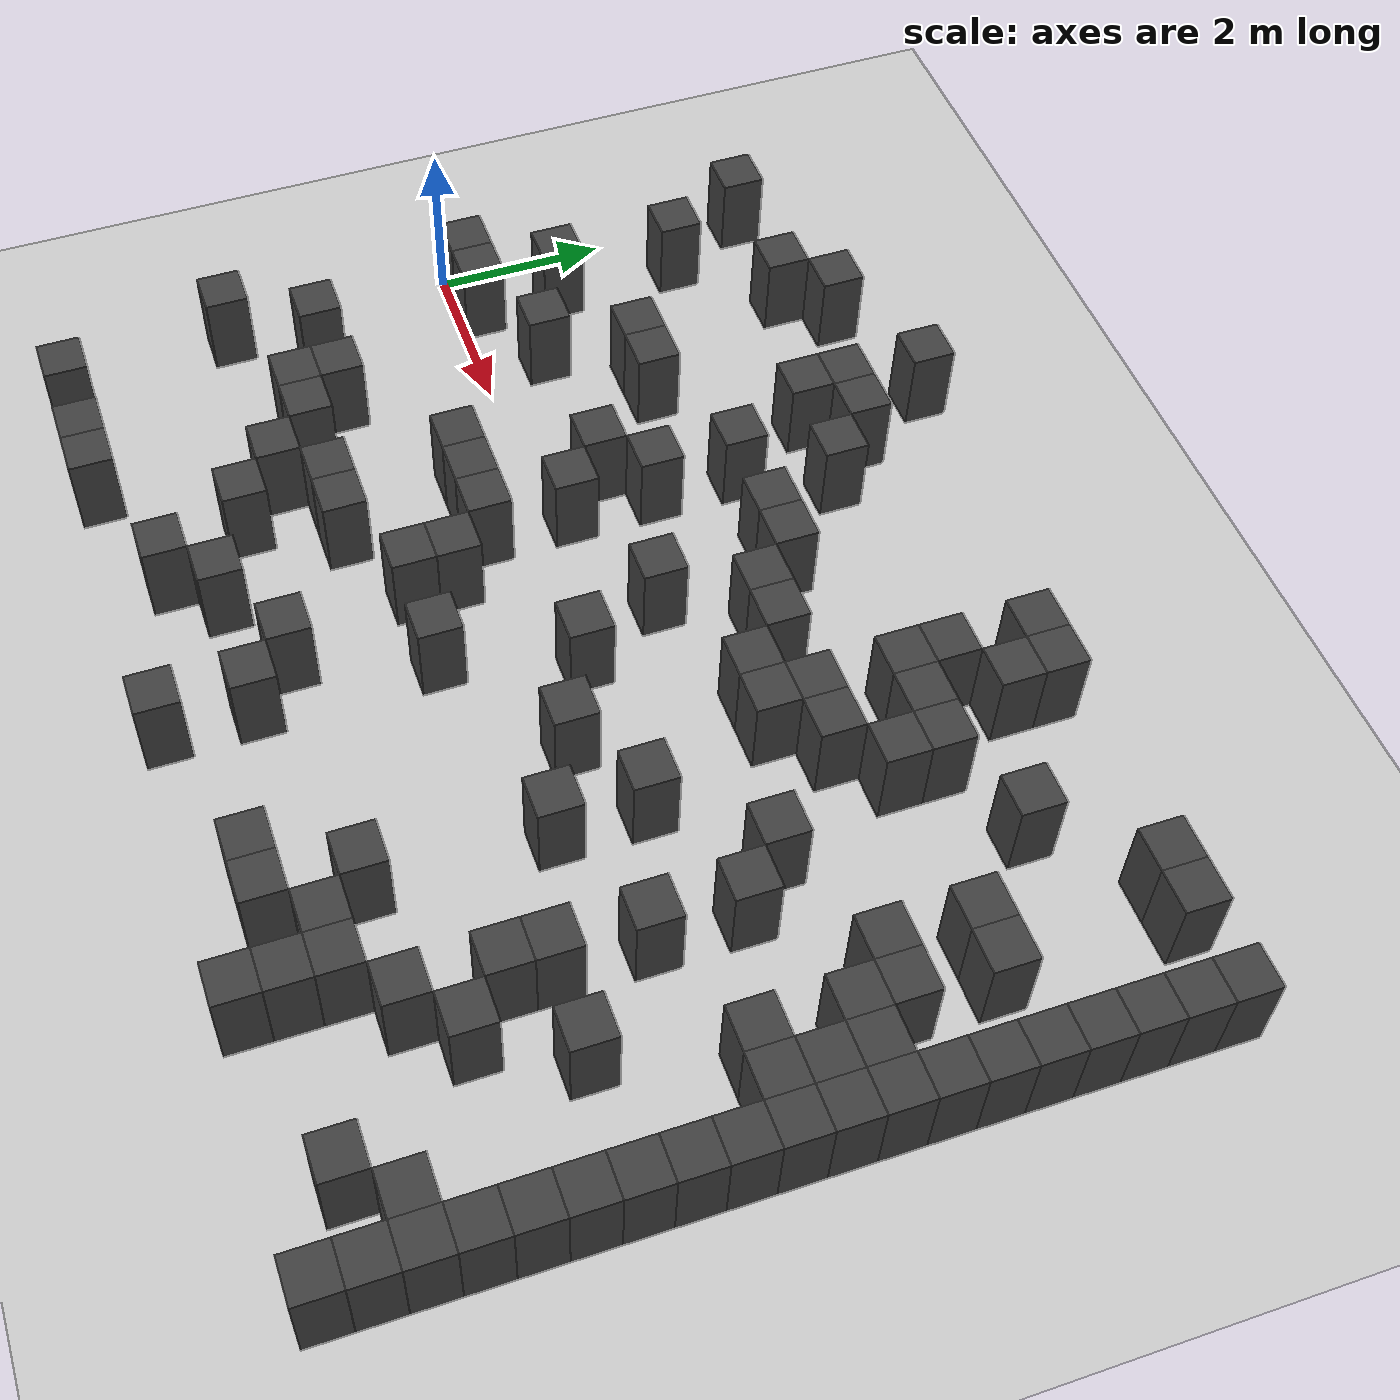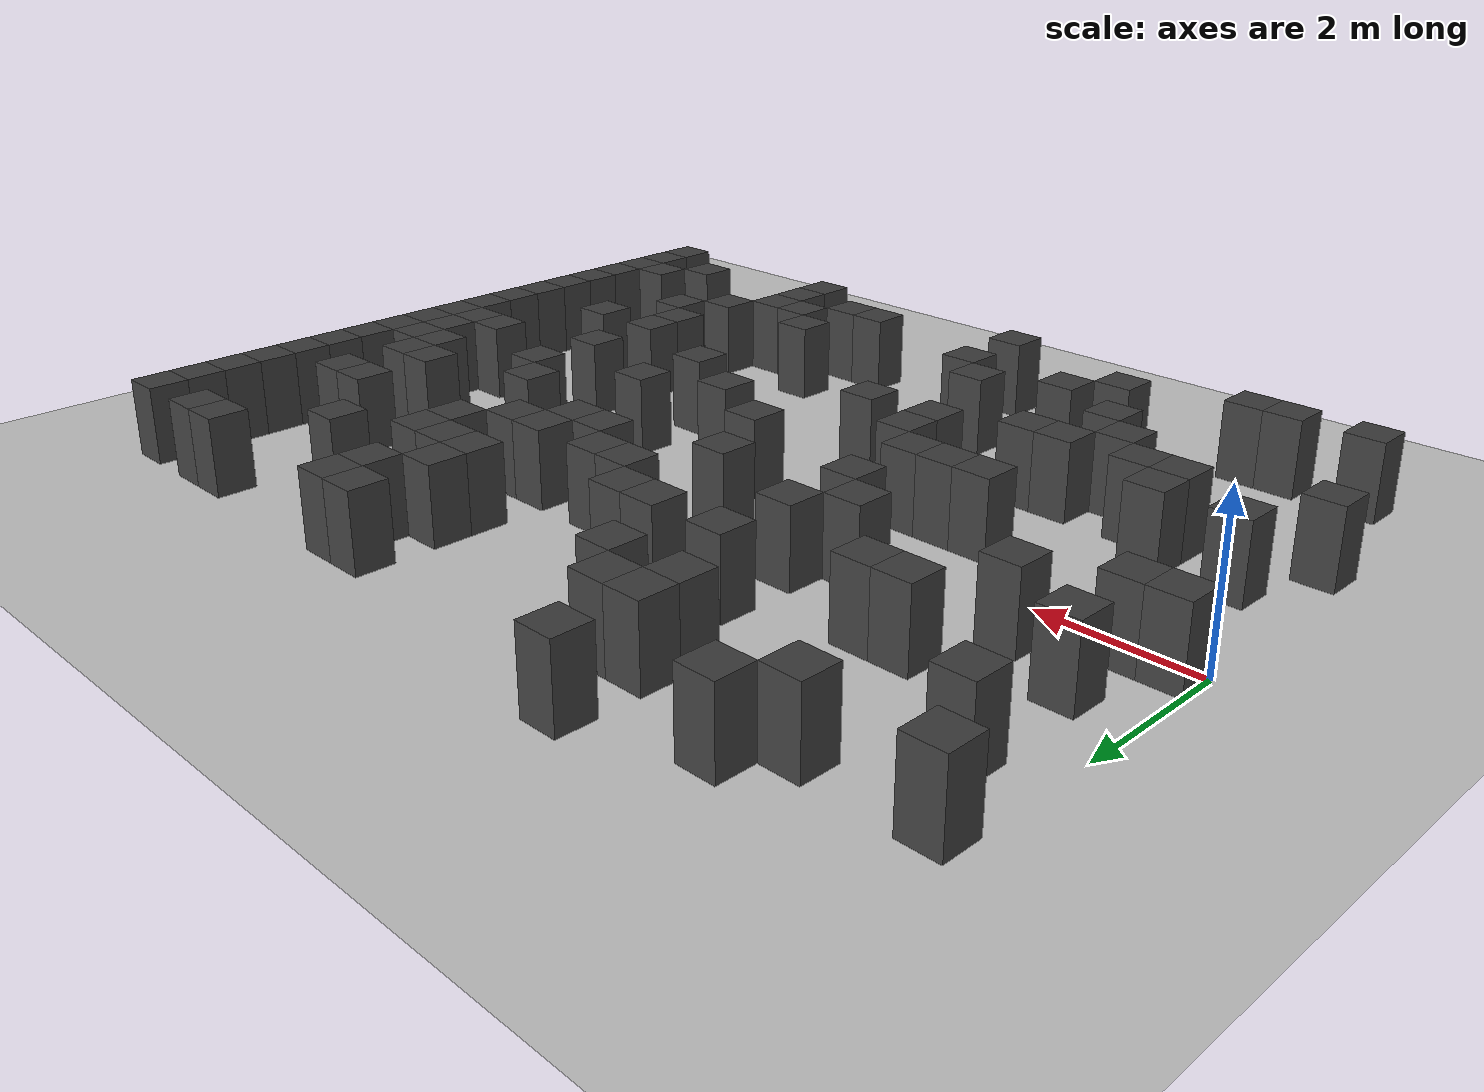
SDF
<sdf version="1.7">
 <world name="map_4226">
  <model name="ground_plane">
   <static>true</static>
   <link name="link">
    <collision name="collision">
     <geometry><plane><normal>0 0 1</normal><size>200 200</size></plane></geometry>
    </collision>
    <visual name="visual">
     <geometry><plane><normal>0 0 1</normal><size>200 200</size></plane></geometry>
     <material><ambient>0.8 0.8 0.8 1</ambient><diffuse>0.8 0.8 0.8 1</diffuse></material>
    </visual>
   </link>
  </model>
  <model name="maze_environment">
   <static>true</static>
   <link name="wall_222">
    <pose>3.750 4.750 0.500 0 0 0</pose>
    <collision name="col"><geometry><box><size>0.5 0.5 1.0</size></box></geometry></collision>
    <visual name="vis">
     <geometry><box><size>0.5 0.5 1.0</size></box></geometry>
     <material><ambient>0.15 0.15 0.15 1</ambient><diffuse>0.25 0.25 0.25 1</diffuse></material>
    </visual>
   </link>
   <link name="wall_236">
    <pose>2.250 4.250 0.500 0 0 0</pose>
    <collision name="col"><geometry><box><size>0.5 0.5 1.0</size></box></geometry></collision>
    <visual name="vis">
     <geometry><box><size>0.5 0.5 1.0</size></box></geometry>
     <material><ambient>0.15 0.15 0.15 1</ambient><diffuse>0.25 0.25 0.25 1</diffuse></material>
    </visual>
   </link>
   <link name="wall_237">
    <pose>7.750 4.250 0.500 0 0 0</pose>
    <collision name="col"><geometry><box><size>0.5 0.5 1.0</size></box></geometry></collision>
    <visual name="vis">
     <geometry><box><size>0.5 0.5 1.0</size></box></geometry>
     <material><ambient>0.15 0.15 0.15 1</ambient><diffuse>0.25 0.25 0.25 1</diffuse></material>
    </visual>
   </link>
   <link name="wall_238">
    <pose>8.250 4.250 0.500 0 0 0</pose>
    <collision name="col"><geometry><box><size>0.5 0.5 1.0</size></box></geometry></collision>
    <visual name="vis">
     <geometry><box><size>0.5 0.5 1.0</size></box></geometry>
     <material><ambient>0.15 0.15 0.15 1</ambient><diffuse>0.25 0.25 0.25 1</diffuse></material>
    </visual>
   </link>
   <link name="wall_239">
    <pose>10.750 4.250 0.500 0 0 0</pose>
    <collision name="col"><geometry><box><size>0.5 0.5 1.0</size></box></geometry></collision>
    <visual name="vis">
     <geometry><box><size>0.5 0.5 1.0</size></box></geometry>
     <material><ambient>0.15 0.15 0.15 1</ambient><diffuse>0.25 0.25 0.25 1</diffuse></material>
    </visual>
   </link>
   <link name="wall_240">
    <pose>11.250 4.250 0.500 0 0 0</pose>
    <collision name="col"><geometry><box><size>0.5 0.5 1.0</size></box></geometry></collision>
    <visual name="vis">
     <geometry><box><size>0.5 0.5 1.0</size></box></geometry>
     <material><ambient>0.15 0.15 0.15 1</ambient><diffuse>0.25 0.25 0.25 1</diffuse></material>
    </visual>
   </link>
   <link name="wall_241">
    <pose>12.250 4.250 0.500 0 0 0</pose>
    <collision name="col"><geometry><box><size>0.5 0.5 1.0</size></box></geometry></collision>
    <visual name="vis">
     <geometry><box><size>0.5 0.5 1.0</size></box></geometry>
     <material><ambient>0.15 0.15 0.15 1</ambient><diffuse>0.25 0.25 0.25 1</diffuse></material>
    </visual>
   </link>
   <link name="wall_245">
    <pose>0.250 3.750 0.500 0 0 0</pose>
    <collision name="col"><geometry><box><size>0.5 0.5 1.0</size></box></geometry></collision>
    <visual name="vis">
     <geometry><box><size>0.5 0.5 1.0</size></box></geometry>
     <material><ambient>0.15 0.15 0.15 1</ambient><diffuse>0.25 0.25 0.25 1</diffuse></material>
    </visual>
   </link>
   <link name="wall_246">
    <pose>1.750 3.750 0.500 0 0 0</pose>
    <collision name="col"><geometry><box><size>0.5 0.5 1.0</size></box></geometry></collision>
    <visual name="vis">
     <geometry><box><size>0.5 0.5 1.0</size></box></geometry>
     <material><ambient>0.15 0.15 0.15 1</ambient><diffuse>0.25 0.25 0.25 1</diffuse></material>
    </visual>
   </link>
   <link name="wall_247">
    <pose>3.750 3.750 0.500 0 0 0</pose>
    <collision name="col"><geometry><box><size>0.5 0.5 1.0</size></box></geometry></collision>
    <visual name="vis">
     <geometry><box><size>0.5 0.5 1.0</size></box></geometry>
     <material><ambient>0.15 0.15 0.15 1</ambient><diffuse>0.25 0.25 0.25 1</diffuse></material>
    </visual>
   </link>
   <link name="wall_248">
    <pose>4.250 3.750 0.500 0 0 0</pose>
    <collision name="col"><geometry><box><size>0.5 0.5 1.0</size></box></geometry></collision>
    <visual name="vis">
     <geometry><box><size>0.5 0.5 1.0</size></box></geometry>
     <material><ambient>0.15 0.15 0.15 1</ambient><diffuse>0.25 0.25 0.25 1</diffuse></material>
    </visual>
   </link>
   <link name="wall_249">
    <pose>8.250 3.750 0.500 0 0 0</pose>
    <collision name="col"><geometry><box><size>0.5 0.5 1.0</size></box></geometry></collision>
    <visual name="vis">
     <geometry><box><size>0.5 0.5 1.0</size></box></geometry>
     <material><ambient>0.15 0.15 0.15 1</ambient><diffuse>0.25 0.25 0.25 1</diffuse></material>
    </visual>
   </link>
   <link name="wall_250">
    <pose>12.250 3.750 0.500 0 0 0</pose>
    <collision name="col"><geometry><box><size>0.5 0.5 1.0</size></box></geometry></collision>
    <visual name="vis">
     <geometry><box><size>0.5 0.5 1.0</size></box></geometry>
     <material><ambient>0.15 0.15 0.15 1</ambient><diffuse>0.25 0.25 0.25 1</diffuse></material>
    </visual>
   </link>
   <link name="wall_252">
    <pose>3.750 3.250 0.500 0 0 0</pose>
    <collision name="col"><geometry><box><size>0.5 0.5 1.0</size></box></geometry></collision>
    <visual name="vis">
     <geometry><box><size>0.5 0.5 1.0</size></box></geometry>
     <material><ambient>0.15 0.15 0.15 1</ambient><diffuse>0.25 0.25 0.25 1</diffuse></material>
    </visual>
   </link>
   <link name="wall_253">
    <pose>4.750 3.250 0.500 0 0 0</pose>
    <collision name="col"><geometry><box><size>0.5 0.5 1.0</size></box></geometry></collision>
    <visual name="vis">
     <geometry><box><size>0.5 0.5 1.0</size></box></geometry>
     <material><ambient>0.15 0.15 0.15 1</ambient><diffuse>0.25 0.25 0.25 1</diffuse></material>
    </visual>
   </link>
   <link name="wall_254">
    <pose>7.750 3.250 0.500 0 0 0</pose>
    <collision name="col"><geometry><box><size>0.5 0.5 1.0</size></box></geometry></collision>
    <visual name="vis">
     <geometry><box><size>0.5 0.5 1.0</size></box></geometry>
     <material><ambient>0.15 0.15 0.15 1</ambient><diffuse>0.25 0.25 0.25 1</diffuse></material>
    </visual>
   </link>
   <link name="wall_255">
    <pose>9.750 3.250 0.500 0 0 0</pose>
    <collision name="col"><geometry><box><size>0.5 0.5 1.0</size></box></geometry></collision>
    <visual name="vis">
     <geometry><box><size>0.5 0.5 1.0</size></box></geometry>
     <material><ambient>0.15 0.15 0.15 1</ambient><diffuse>0.25 0.25 0.25 1</diffuse></material>
    </visual>
   </link>
   <link name="wall_256">
    <pose>12.250 3.250 0.500 0 0 0</pose>
    <collision name="col"><geometry><box><size>0.5 0.5 1.0</size></box></geometry></collision>
    <visual name="vis">
     <geometry><box><size>0.5 0.5 1.0</size></box></geometry>
     <material><ambient>0.15 0.15 0.15 1</ambient><diffuse>0.25 0.25 0.25 1</diffuse></material>
    </visual>
   </link>
   <link name="wall_264">
    <pose>0.750 2.750 0.500 0 0 0</pose>
    <collision name="col"><geometry><box><size>0.5 0.5 1.0</size></box></geometry></collision>
    <visual name="vis">
     <geometry><box><size>0.5 0.5 1.0</size></box></geometry>
     <material><ambient>0.15 0.15 0.15 1</ambient><diffuse>0.25 0.25 0.25 1</diffuse></material>
    </visual>
   </link>
   <link name="wall_265">
    <pose>7.750 2.750 0.500 0 0 0</pose>
    <collision name="col"><geometry><box><size>0.5 0.5 1.0</size></box></geometry></collision>
    <visual name="vis">
     <geometry><box><size>0.5 0.5 1.0</size></box></geometry>
     <material><ambient>0.15 0.15 0.15 1</ambient><diffuse>0.25 0.25 0.25 1</diffuse></material>
    </visual>
   </link>
   <link name="wall_266">
    <pose>8.250 2.750 0.500 0 0 0</pose>
    <collision name="col"><geometry><box><size>0.5 0.5 1.0</size></box></geometry></collision>
    <visual name="vis">
     <geometry><box><size>0.5 0.5 1.0</size></box></geometry>
     <material><ambient>0.15 0.15 0.15 1</ambient><diffuse>0.25 0.25 0.25 1</diffuse></material>
    </visual>
   </link>
   <link name="wall_267">
    <pose>8.750 2.750 0.500 0 0 0</pose>
    <collision name="col"><geometry><box><size>0.5 0.5 1.0</size></box></geometry></collision>
    <visual name="vis">
     <geometry><box><size>0.5 0.5 1.0</size></box></geometry>
     <material><ambient>0.15 0.15 0.15 1</ambient><diffuse>0.25 0.25 0.25 1</diffuse></material>
    </visual>
   </link>
   <link name="wall_268">
    <pose>12.250 2.750 0.500 0 0 0</pose>
    <collision name="col"><geometry><box><size>0.5 0.5 1.0</size></box></geometry></collision>
    <visual name="vis">
     <geometry><box><size>0.5 0.5 1.0</size></box></geometry>
     <material><ambient>0.15 0.15 0.15 1</ambient><diffuse>0.25 0.25 0.25 1</diffuse></material>
    </visual>
   </link>
   <link name="wall_275">
    <pose>4.250 2.250 0.500 0 0 0</pose>
    <collision name="col"><geometry><box><size>0.5 0.5 1.0</size></box></geometry></collision>
    <visual name="vis">
     <geometry><box><size>0.5 0.5 1.0</size></box></geometry>
     <material><ambient>0.15 0.15 0.15 1</ambient><diffuse>0.25 0.25 0.25 1</diffuse></material>
    </visual>
   </link>
   <link name="wall_276">
    <pose>5.250 2.250 0.500 0 0 0</pose>
    <collision name="col"><geometry><box><size>0.5 0.5 1.0</size></box></geometry></collision>
    <visual name="vis">
     <geometry><box><size>0.5 0.5 1.0</size></box></geometry>
     <material><ambient>0.15 0.15 0.15 1</ambient><diffuse>0.25 0.25 0.25 1</diffuse></material>
    </visual>
   </link>
   <link name="wall_277">
    <pose>5.750 2.250 0.500 0 0 0</pose>
    <collision name="col"><geometry><box><size>0.5 0.5 1.0</size></box></geometry></collision>
    <visual name="vis">
     <geometry><box><size>0.5 0.5 1.0</size></box></geometry>
     <material><ambient>0.15 0.15 0.15 1</ambient><diffuse>0.25 0.25 0.25 1</diffuse></material>
    </visual>
   </link>
   <link name="wall_278">
    <pose>8.750 2.250 0.500 0 0 0</pose>
    <collision name="col"><geometry><box><size>0.5 0.5 1.0</size></box></geometry></collision>
    <visual name="vis">
     <geometry><box><size>0.5 0.5 1.0</size></box></geometry>
     <material><ambient>0.15 0.15 0.15 1</ambient><diffuse>0.25 0.25 0.25 1</diffuse></material>
    </visual>
   </link>
   <link name="wall_279">
    <pose>10.750 2.250 0.500 0 0 0</pose>
    <collision name="col"><geometry><box><size>0.5 0.5 1.0</size></box></geometry></collision>
    <visual name="vis">
     <geometry><box><size>0.5 0.5 1.0</size></box></geometry>
     <material><ambient>0.15 0.15 0.15 1</ambient><diffuse>0.25 0.25 0.25 1</diffuse></material>
    </visual>
   </link>
   <link name="wall_280">
    <pose>11.250 2.250 0.500 0 0 0</pose>
    <collision name="col"><geometry><box><size>0.5 0.5 1.0</size></box></geometry></collision>
    <visual name="vis">
     <geometry><box><size>0.5 0.5 1.0</size></box></geometry>
     <material><ambient>0.15 0.15 0.15 1</ambient><diffuse>0.25 0.25 0.25 1</diffuse></material>
    </visual>
   </link>
   <link name="wall_281">
    <pose>12.250 2.250 0.500 0 0 0</pose>
    <collision name="col"><geometry><box><size>0.5 0.5 1.0</size></box></geometry></collision>
    <visual name="vis">
     <geometry><box><size>0.5 0.5 1.0</size></box></geometry>
     <material><ambient>0.15 0.15 0.15 1</ambient><diffuse>0.25 0.25 0.25 1</diffuse></material>
    </visual>
   </link>
   <link name="wall_288">
    <pose>2.250 1.750 0.500 0 0 0</pose>
    <collision name="col"><geometry><box><size>0.5 0.5 1.0</size></box></geometry></collision>
    <visual name="vis">
     <geometry><box><size>0.5 0.5 1.0</size></box></geometry>
     <material><ambient>0.15 0.15 0.15 1</ambient><diffuse>0.25 0.25 0.25 1</diffuse></material>
    </visual>
   </link>
   <link name="wall_289">
    <pose>2.750 1.750 0.500 0 0 0</pose>
    <collision name="col"><geometry><box><size>0.5 0.5 1.0</size></box></geometry></collision>
    <visual name="vis">
     <geometry><box><size>0.5 0.5 1.0</size></box></geometry>
     <material><ambient>0.15 0.15 0.15 1</ambient><diffuse>0.25 0.25 0.25 1</diffuse></material>
    </visual>
   </link>
   <link name="wall_290">
    <pose>6.250 1.750 0.500 0 0 0</pose>
    <collision name="col"><geometry><box><size>0.5 0.5 1.0</size></box></geometry></collision>
    <visual name="vis">
     <geometry><box><size>0.5 0.5 1.0</size></box></geometry>
     <material><ambient>0.15 0.15 0.15 1</ambient><diffuse>0.25 0.25 0.25 1</diffuse></material>
    </visual>
   </link>
   <link name="wall_291">
    <pose>6.750 1.750 0.500 0 0 0</pose>
    <collision name="col"><geometry><box><size>0.5 0.5 1.0</size></box></geometry></collision>
    <visual name="vis">
     <geometry><box><size>0.5 0.5 1.0</size></box></geometry>
     <material><ambient>0.15 0.15 0.15 1</ambient><diffuse>0.25 0.25 0.25 1</diffuse></material>
    </visual>
   </link>
   <link name="wall_292">
    <pose>7.750 1.750 0.500 0 0 0</pose>
    <collision name="col"><geometry><box><size>0.5 0.5 1.0</size></box></geometry></collision>
    <visual name="vis">
     <geometry><box><size>0.5 0.5 1.0</size></box></geometry>
     <material><ambient>0.15 0.15 0.15 1</ambient><diffuse>0.25 0.25 0.25 1</diffuse></material>
    </visual>
   </link>
   <link name="wall_293">
    <pose>8.250 1.750 0.500 0 0 0</pose>
    <collision name="col"><geometry><box><size>0.5 0.5 1.0</size></box></geometry></collision>
    <visual name="vis">
     <geometry><box><size>0.5 0.5 1.0</size></box></geometry>
     <material><ambient>0.15 0.15 0.15 1</ambient><diffuse>0.25 0.25 0.25 1</diffuse></material>
    </visual>
   </link>
   <link name="wall_294">
    <pose>12.250 1.750 0.500 0 0 0</pose>
    <collision name="col"><geometry><box><size>0.5 0.5 1.0</size></box></geometry></collision>
    <visual name="vis">
     <geometry><box><size>0.5 0.5 1.0</size></box></geometry>
     <material><ambient>0.15 0.15 0.15 1</ambient><diffuse>0.25 0.25 0.25 1</diffuse></material>
    </visual>
   </link>
   <link name="wall_297">
    <pose>0.750 1.250 0.500 0 0 0</pose>
    <collision name="col"><geometry><box><size>0.5 0.5 1.0</size></box></geometry></collision>
    <visual name="vis">
     <geometry><box><size>0.5 0.5 1.0</size></box></geometry>
     <material><ambient>0.15 0.15 0.15 1</ambient><diffuse>0.25 0.25 0.25 1</diffuse></material>
    </visual>
   </link>
   <link name="wall_298">
    <pose>4.250 1.250 0.500 0 0 0</pose>
    <collision name="col"><geometry><box><size>0.5 0.5 1.0</size></box></geometry></collision>
    <visual name="vis">
     <geometry><box><size>0.5 0.5 1.0</size></box></geometry>
     <material><ambient>0.15 0.15 0.15 1</ambient><diffuse>0.25 0.25 0.25 1</diffuse></material>
    </visual>
   </link>
   <link name="wall_299">
    <pose>7.250 1.250 0.500 0 0 0</pose>
    <collision name="col"><geometry><box><size>0.5 0.5 1.0</size></box></geometry></collision>
    <visual name="vis">
     <geometry><box><size>0.5 0.5 1.0</size></box></geometry>
     <material><ambient>0.15 0.15 0.15 1</ambient><diffuse>0.25 0.25 0.25 1</diffuse></material>
    </visual>
   </link>
   <link name="wall_300">
    <pose>7.750 1.250 0.500 0 0 0</pose>
    <collision name="col"><geometry><box><size>0.5 0.5 1.0</size></box></geometry></collision>
    <visual name="vis">
     <geometry><box><size>0.5 0.5 1.0</size></box></geometry>
     <material><ambient>0.15 0.15 0.15 1</ambient><diffuse>0.25 0.25 0.25 1</diffuse></material>
    </visual>
   </link>
   <link name="wall_301">
    <pose>10.750 1.250 0.500 0 0 0</pose>
    <collision name="col"><geometry><box><size>0.5 0.5 1.0</size></box></geometry></collision>
    <visual name="vis">
     <geometry><box><size>0.5 0.5 1.0</size></box></geometry>
     <material><ambient>0.15 0.15 0.15 1</ambient><diffuse>0.25 0.25 0.25 1</diffuse></material>
    </visual>
   </link>
   <link name="wall_302">
    <pose>11.250 1.250 0.500 0 0 0</pose>
    <collision name="col"><geometry><box><size>0.5 0.5 1.0</size></box></geometry></collision>
    <visual name="vis">
     <geometry><box><size>0.5 0.5 1.0</size></box></geometry>
     <material><ambient>0.15 0.15 0.15 1</ambient><diffuse>0.25 0.25 0.25 1</diffuse></material>
    </visual>
   </link>
   <link name="wall_303">
    <pose>12.250 1.250 0.500 0 0 0</pose>
    <collision name="col"><geometry><box><size>0.5 0.5 1.0</size></box></geometry></collision>
    <visual name="vis">
     <geometry><box><size>0.5 0.5 1.0</size></box></geometry>
     <material><ambient>0.15 0.15 0.15 1</ambient><diffuse>0.25 0.25 0.25 1</diffuse></material>
    </visual>
   </link>
   <link name="wall_309">
    <pose>1.750 0.750 0.500 0 0 0</pose>
    <collision name="col"><geometry><box><size>0.5 0.5 1.0</size></box></geometry></collision>
    <visual name="vis">
     <geometry><box><size>0.5 0.5 1.0</size></box></geometry>
     <material><ambient>0.15 0.15 0.15 1</ambient><diffuse>0.25 0.25 0.25 1</diffuse></material>
    </visual>
   </link>
   <link name="wall_310">
    <pose>3.750 0.750 0.500 0 0 0</pose>
    <collision name="col"><geometry><box><size>0.5 0.5 1.0</size></box></geometry></collision>
    <visual name="vis">
     <geometry><box><size>0.5 0.5 1.0</size></box></geometry>
     <material><ambient>0.15 0.15 0.15 1</ambient><diffuse>0.25 0.25 0.25 1</diffuse></material>
    </visual>
   </link>
   <link name="wall_311">
    <pose>5.750 0.750 0.500 0 0 0</pose>
    <collision name="col"><geometry><box><size>0.5 0.5 1.0</size></box></geometry></collision>
    <visual name="vis">
     <geometry><box><size>0.5 0.5 1.0</size></box></geometry>
     <material><ambient>0.15 0.15 0.15 1</ambient><diffuse>0.25 0.25 0.25 1</diffuse></material>
    </visual>
   </link>
   <link name="wall_312">
    <pose>9.250 0.750 0.500 0 0 0</pose>
    <collision name="col"><geometry><box><size>0.5 0.5 1.0</size></box></geometry></collision>
    <visual name="vis">
     <geometry><box><size>0.5 0.5 1.0</size></box></geometry>
     <material><ambient>0.15 0.15 0.15 1</ambient><diffuse>0.25 0.25 0.25 1</diffuse></material>
    </visual>
   </link>
   <link name="wall_313">
    <pose>11.250 0.750 0.500 0 0 0</pose>
    <collision name="col"><geometry><box><size>0.5 0.5 1.0</size></box></geometry></collision>
    <visual name="vis">
     <geometry><box><size>0.5 0.5 1.0</size></box></geometry>
     <material><ambient>0.15 0.15 0.15 1</ambient><diffuse>0.25 0.25 0.25 1</diffuse></material>
    </visual>
   </link>
   <link name="wall_314">
    <pose>11.750 0.750 0.500 0 0 0</pose>
    <collision name="col"><geometry><box><size>0.5 0.5 1.0</size></box></geometry></collision>
    <visual name="vis">
     <geometry><box><size>0.5 0.5 1.0</size></box></geometry>
     <material><ambient>0.15 0.15 0.15 1</ambient><diffuse>0.25 0.25 0.25 1</diffuse></material>
    </visual>
   </link>
   <link name="wall_315">
    <pose>12.250 0.750 0.500 0 0 0</pose>
    <collision name="col"><geometry><box><size>0.5 0.5 1.0</size></box></geometry></collision>
    <visual name="vis">
     <geometry><box><size>0.5 0.5 1.0</size></box></geometry>
     <material><ambient>0.15 0.15 0.15 1</ambient><diffuse>0.25 0.25 0.25 1</diffuse></material>
    </visual>
   </link>
   <link name="wall_322">
    <pose>0.250 0.250 0.500 0 0 0</pose>
    <collision name="col"><geometry><box><size>0.5 0.5 1.0</size></box></geometry></collision>
    <visual name="vis">
     <geometry><box><size>0.5 0.5 1.0</size></box></geometry>
     <material><ambient>0.15 0.15 0.15 1</ambient><diffuse>0.25 0.25 0.25 1</diffuse></material>
    </visual>
   </link>
   <link name="wall_323">
    <pose>0.750 0.250 0.500 0 0 0</pose>
    <collision name="col"><geometry><box><size>0.5 0.5 1.0</size></box></geometry></collision>
    <visual name="vis">
     <geometry><box><size>0.5 0.5 1.0</size></box></geometry>
     <material><ambient>0.15 0.15 0.15 1</ambient><diffuse>0.25 0.25 0.25 1</diffuse></material>
    </visual>
   </link>
   <link name="wall_324">
    <pose>4.250 0.250 0.500 0 0 0</pose>
    <collision name="col"><geometry><box><size>0.5 0.5 1.0</size></box></geometry></collision>
    <visual name="vis">
     <geometry><box><size>0.5 0.5 1.0</size></box></geometry>
     <material><ambient>0.15 0.15 0.15 1</ambient><diffuse>0.25 0.25 0.25 1</diffuse></material>
    </visual>
   </link>
   <link name="wall_325">
    <pose>9.750 0.250 0.500 0 0 0</pose>
    <collision name="col"><geometry><box><size>0.5 0.5 1.0</size></box></geometry></collision>
    <visual name="vis">
     <geometry><box><size>0.5 0.5 1.0</size></box></geometry>
     <material><ambient>0.15 0.15 0.15 1</ambient><diffuse>0.25 0.25 0.25 1</diffuse></material>
    </visual>
   </link>
   <link name="wall_326">
    <pose>11.750 0.250 0.500 0 0 0</pose>
    <collision name="col"><geometry><box><size>0.5 0.5 1.0</size></box></geometry></collision>
    <visual name="vis">
     <geometry><box><size>0.5 0.5 1.0</size></box></geometry>
     <material><ambient>0.15 0.15 0.15 1</ambient><diffuse>0.25 0.25 0.25 1</diffuse></material>
    </visual>
   </link>
   <link name="wall_327">
    <pose>12.250 0.250 0.500 0 0 0</pose>
    <collision name="col"><geometry><box><size>0.5 0.5 1.0</size></box></geometry></collision>
    <visual name="vis">
     <geometry><box><size>0.5 0.5 1.0</size></box></geometry>
     <material><ambient>0.15 0.15 0.15 1</ambient><diffuse>0.25 0.25 0.25 1</diffuse></material>
    </visual>
   </link>
   <link name="wall_334">
    <pose>6.250 -0.250 0.500 0 0 0</pose>
    <collision name="col"><geometry><box><size>0.5 0.5 1.0</size></box></geometry></collision>
    <visual name="vis">
     <geometry><box><size>0.5 0.5 1.0</size></box></geometry>
     <material><ambient>0.15 0.15 0.15 1</ambient><diffuse>0.25 0.25 0.25 1</diffuse></material>
    </visual>
   </link>
   <link name="wall_335">
    <pose>8.250 -0.250 0.500 0 0 0</pose>
    <collision name="col"><geometry><box><size>0.5 0.5 1.0</size></box></geometry></collision>
    <visual name="vis">
     <geometry><box><size>0.5 0.5 1.0</size></box></geometry>
     <material><ambient>0.15 0.15 0.15 1</ambient><diffuse>0.25 0.25 0.25 1</diffuse></material>
    </visual>
   </link>
   <link name="wall_336">
    <pose>11.250 -0.250 0.500 0 0 0</pose>
    <collision name="col"><geometry><box><size>0.5 0.5 1.0</size></box></geometry></collision>
    <visual name="vis">
     <geometry><box><size>0.5 0.5 1.0</size></box></geometry>
     <material><ambient>0.15 0.15 0.15 1</ambient><diffuse>0.25 0.25 0.25 1</diffuse></material>
    </visual>
   </link>
   <link name="wall_337">
    <pose>11.750 -0.250 0.500 0 0 0</pose>
    <collision name="col"><geometry><box><size>0.5 0.5 1.0</size></box></geometry></collision>
    <visual name="vis">
     <geometry><box><size>0.5 0.5 1.0</size></box></geometry>
     <material><ambient>0.15 0.15 0.15 1</ambient><diffuse>0.25 0.25 0.25 1</diffuse></material>
    </visual>
   </link>
   <link name="wall_338">
    <pose>12.250 -0.250 0.500 0 0 0</pose>
    <collision name="col"><geometry><box><size>0.5 0.5 1.0</size></box></geometry></collision>
    <visual name="vis">
     <geometry><box><size>0.5 0.5 1.0</size></box></geometry>
     <material><ambient>0.15 0.15 0.15 1</ambient><diffuse>0.25 0.25 0.25 1</diffuse></material>
    </visual>
   </link>
   <link name="wall_346">
    <pose>3.250 -0.750 0.500 0 0 0</pose>
    <collision name="col"><geometry><box><size>0.5 0.5 1.0</size></box></geometry></collision>
    <visual name="vis">
     <geometry><box><size>0.5 0.5 1.0</size></box></geometry>
     <material><ambient>0.15 0.15 0.15 1</ambient><diffuse>0.25 0.25 0.25 1</diffuse></material>
    </visual>
   </link>
   <link name="wall_347">
    <pose>3.750 -0.750 0.500 0 0 0</pose>
    <collision name="col"><geometry><box><size>0.5 0.5 1.0</size></box></geometry></collision>
    <visual name="vis">
     <geometry><box><size>0.5 0.5 1.0</size></box></geometry>
     <material><ambient>0.15 0.15 0.15 1</ambient><diffuse>0.25 0.25 0.25 1</diffuse></material>
    </visual>
   </link>
   <link name="wall_348">
    <pose>4.250 -0.750 0.500 0 0 0</pose>
    <collision name="col"><geometry><box><size>0.5 0.5 1.0</size></box></geometry></collision>
    <visual name="vis">
     <geometry><box><size>0.5 0.5 1.0</size></box></geometry>
     <material><ambient>0.15 0.15 0.15 1</ambient><diffuse>0.25 0.25 0.25 1</diffuse></material>
    </visual>
   </link>
   <link name="wall_349">
    <pose>7.250 -0.750 0.500 0 0 0</pose>
    <collision name="col"><geometry><box><size>0.5 0.5 1.0</size></box></geometry></collision>
    <visual name="vis">
     <geometry><box><size>0.5 0.5 1.0</size></box></geometry>
     <material><ambient>0.15 0.15 0.15 1</ambient><diffuse>0.25 0.25 0.25 1</diffuse></material>
    </visual>
   </link>
   <link name="wall_350">
    <pose>9.750 -0.750 0.500 0 0 0</pose>
    <collision name="col"><geometry><box><size>0.5 0.5 1.0</size></box></geometry></collision>
    <visual name="vis">
     <geometry><box><size>0.5 0.5 1.0</size></box></geometry>
     <material><ambient>0.15 0.15 0.15 1</ambient><diffuse>0.25 0.25 0.25 1</diffuse></material>
    </visual>
   </link>
   <link name="wall_351">
    <pose>12.250 -0.750 0.500 0 0 0</pose>
    <collision name="col"><geometry><box><size>0.5 0.5 1.0</size></box></geometry></collision>
    <visual name="vis">
     <geometry><box><size>0.5 0.5 1.0</size></box></geometry>
     <material><ambient>0.15 0.15 0.15 1</ambient><diffuse>0.25 0.25 0.25 1</diffuse></material>
    </visual>
   </link>
   <link name="wall_360">
    <pose>4.750 -1.250 0.500 0 0 0</pose>
    <collision name="col"><geometry><box><size>0.5 0.5 1.0</size></box></geometry></collision>
    <visual name="vis">
     <geometry><box><size>0.5 0.5 1.0</size></box></geometry>
     <material><ambient>0.15 0.15 0.15 1</ambient><diffuse>0.25 0.25 0.25 1</diffuse></material>
    </visual>
   </link>
   <link name="wall_361">
    <pose>8.250 -1.250 0.500 0 0 0</pose>
    <collision name="col"><geometry><box><size>0.5 0.5 1.0</size></box></geometry></collision>
    <visual name="vis">
     <geometry><box><size>0.5 0.5 1.0</size></box></geometry>
     <material><ambient>0.15 0.15 0.15 1</ambient><diffuse>0.25 0.25 0.25 1</diffuse></material>
    </visual>
   </link>
   <link name="wall_362">
    <pose>12.250 -1.250 0.500 0 0 0</pose>
    <collision name="col"><geometry><box><size>0.5 0.5 1.0</size></box></geometry></collision>
    <visual name="vis">
     <geometry><box><size>0.5 0.5 1.0</size></box></geometry>
     <material><ambient>0.15 0.15 0.15 1</ambient><diffuse>0.25 0.25 0.25 1</diffuse></material>
    </visual>
   </link>
   <link name="wall_369">
    <pose>0.750 -1.750 0.500 0 0 0</pose>
    <collision name="col"><geometry><box><size>0.5 0.5 1.0</size></box></geometry></collision>
    <visual name="vis">
     <geometry><box><size>0.5 0.5 1.0</size></box></geometry>
     <material><ambient>0.15 0.15 0.15 1</ambient><diffuse>0.25 0.25 0.25 1</diffuse></material>
    </visual>
   </link>
   <link name="wall_370">
    <pose>1.750 -1.750 0.500 0 0 0</pose>
    <collision name="col"><geometry><box><size>0.5 0.5 1.0</size></box></geometry></collision>
    <visual name="vis">
     <geometry><box><size>0.5 0.5 1.0</size></box></geometry>
     <material><ambient>0.15 0.15 0.15 1</ambient><diffuse>0.25 0.25 0.25 1</diffuse></material>
    </visual>
   </link>
   <link name="wall_371">
    <pose>4.750 -1.750 0.500 0 0 0</pose>
    <collision name="col"><geometry><box><size>0.5 0.5 1.0</size></box></geometry></collision>
    <visual name="vis">
     <geometry><box><size>0.5 0.5 1.0</size></box></geometry>
     <material><ambient>0.15 0.15 0.15 1</ambient><diffuse>0.25 0.25 0.25 1</diffuse></material>
    </visual>
   </link>
   <link name="wall_372">
    <pose>5.750 -1.750 0.500 0 0 0</pose>
    <collision name="col"><geometry><box><size>0.5 0.5 1.0</size></box></geometry></collision>
    <visual name="vis">
     <geometry><box><size>0.5 0.5 1.0</size></box></geometry>
     <material><ambient>0.15 0.15 0.15 1</ambient><diffuse>0.25 0.25 0.25 1</diffuse></material>
    </visual>
   </link>
   <link name="wall_373">
    <pose>9.750 -1.750 0.500 0 0 0</pose>
    <collision name="col"><geometry><box><size>0.5 0.5 1.0</size></box></geometry></collision>
    <visual name="vis">
     <geometry><box><size>0.5 0.5 1.0</size></box></geometry>
     <material><ambient>0.15 0.15 0.15 1</ambient><diffuse>0.25 0.25 0.25 1</diffuse></material>
    </visual>
   </link>
   <link name="wall_374">
    <pose>10.750 -1.750 0.500 0 0 0</pose>
    <collision name="col"><geometry><box><size>0.5 0.5 1.0</size></box></geometry></collision>
    <visual name="vis">
     <geometry><box><size>0.5 0.5 1.0</size></box></geometry>
     <material><ambient>0.15 0.15 0.15 1</ambient><diffuse>0.25 0.25 0.25 1</diffuse></material>
    </visual>
   </link>
   <link name="wall_375">
    <pose>12.250 -1.750 0.500 0 0 0</pose>
    <collision name="col"><geometry><box><size>0.5 0.5 1.0</size></box></geometry></collision>
    <visual name="vis">
     <geometry><box><size>0.5 0.5 1.0</size></box></geometry>
     <material><ambient>0.15 0.15 0.15 1</ambient><diffuse>0.25 0.25 0.25 1</diffuse></material>
    </visual>
   </link>
   <link name="wall_386">
    <pose>1.750 -2.250 0.500 0 0 0</pose>
    <collision name="col"><geometry><box><size>0.5 0.5 1.0</size></box></geometry></collision>
    <visual name="vis">
     <geometry><box><size>0.5 0.5 1.0</size></box></geometry>
     <material><ambient>0.15 0.15 0.15 1</ambient><diffuse>0.25 0.25 0.25 1</diffuse></material>
    </visual>
   </link>
   <link name="wall_387">
    <pose>2.250 -2.250 0.500 0 0 0</pose>
    <collision name="col"><geometry><box><size>0.5 0.5 1.0</size></box></geometry></collision>
    <visual name="vis">
     <geometry><box><size>0.5 0.5 1.0</size></box></geometry>
     <material><ambient>0.15 0.15 0.15 1</ambient><diffuse>0.25 0.25 0.25 1</diffuse></material>
    </visual>
   </link>
   <link name="wall_388">
    <pose>3.250 -2.250 0.500 0 0 0</pose>
    <collision name="col"><geometry><box><size>0.5 0.5 1.0</size></box></geometry></collision>
    <visual name="vis">
     <geometry><box><size>0.5 0.5 1.0</size></box></geometry>
     <material><ambient>0.15 0.15 0.15 1</ambient><diffuse>0.25 0.25 0.25 1</diffuse></material>
    </visual>
   </link>
   <link name="wall_389">
    <pose>3.750 -2.250 0.500 0 0 0</pose>
    <collision name="col"><geometry><box><size>0.5 0.5 1.0</size></box></geometry></collision>
    <visual name="vis">
     <geometry><box><size>0.5 0.5 1.0</size></box></geometry>
     <material><ambient>0.15 0.15 0.15 1</ambient><diffuse>0.25 0.25 0.25 1</diffuse></material>
    </visual>
   </link>
   <link name="wall_390">
    <pose>9.750 -2.250 0.500 0 0 0</pose>
    <collision name="col"><geometry><box><size>0.5 0.5 1.0</size></box></geometry></collision>
    <visual name="vis">
     <geometry><box><size>0.5 0.5 1.0</size></box></geometry>
     <material><ambient>0.15 0.15 0.15 1</ambient><diffuse>0.25 0.25 0.25 1</diffuse></material>
    </visual>
   </link>
   <link name="wall_391">
    <pose>12.250 -2.250 0.500 0 0 0</pose>
    <collision name="col"><geometry><box><size>0.5 0.5 1.0</size></box></geometry></collision>
    <visual name="vis">
     <geometry><box><size>0.5 0.5 1.0</size></box></geometry>
     <material><ambient>0.15 0.15 0.15 1</ambient><diffuse>0.25 0.25 0.25 1</diffuse></material>
    </visual>
   </link>
   <link name="wall_399">
    <pose>0.250 -2.750 0.500 0 0 0</pose>
    <collision name="col"><geometry><box><size>0.5 0.5 1.0</size></box></geometry></collision>
    <visual name="vis">
     <geometry><box><size>0.5 0.5 1.0</size></box></geometry>
     <material><ambient>0.15 0.15 0.15 1</ambient><diffuse>0.25 0.25 0.25 1</diffuse></material>
    </visual>
   </link>
   <link name="wall_400">
    <pose>2.750 -2.750 0.500 0 0 0</pose>
    <collision name="col"><geometry><box><size>0.5 0.5 1.0</size></box></geometry></collision>
    <visual name="vis">
     <geometry><box><size>0.5 0.5 1.0</size></box></geometry>
     <material><ambient>0.15 0.15 0.15 1</ambient><diffuse>0.25 0.25 0.25 1</diffuse></material>
    </visual>
   </link>
   <link name="wall_401">
    <pose>10.250 -2.750 0.500 0 0 0</pose>
    <collision name="col"><geometry><box><size>0.5 0.5 1.0</size></box></geometry></collision>
    <visual name="vis">
     <geometry><box><size>0.5 0.5 1.0</size></box></geometry>
     <material><ambient>0.15 0.15 0.15 1</ambient><diffuse>0.25 0.25 0.25 1</diffuse></material>
    </visual>
   </link>
   <link name="wall_402">
    <pose>12.250 -2.750 0.500 0 0 0</pose>
    <collision name="col"><geometry><box><size>0.5 0.5 1.0</size></box></geometry></collision>
    <visual name="vis">
     <geometry><box><size>0.5 0.5 1.0</size></box></geometry>
     <material><ambient>0.15 0.15 0.15 1</ambient><diffuse>0.25 0.25 0.25 1</diffuse></material>
    </visual>
   </link>
   <link name="wall_411">
    <pose>3.250 -3.250 0.500 0 0 0</pose>
    <collision name="col"><geometry><box><size>0.5 0.5 1.0</size></box></geometry></collision>
    <visual name="vis">
     <geometry><box><size>0.5 0.5 1.0</size></box></geometry>
     <material><ambient>0.15 0.15 0.15 1</ambient><diffuse>0.25 0.25 0.25 1</diffuse></material>
    </visual>
   </link>
   <link name="wall_412">
    <pose>5.250 -3.250 0.500 0 0 0</pose>
    <collision name="col"><geometry><box><size>0.5 0.5 1.0</size></box></geometry></collision>
    <visual name="vis">
     <geometry><box><size>0.5 0.5 1.0</size></box></geometry>
     <material><ambient>0.15 0.15 0.15 1</ambient><diffuse>0.25 0.25 0.25 1</diffuse></material>
    </visual>
   </link>
   <link name="wall_413">
    <pose>8.250 -3.250 0.500 0 0 0</pose>
    <collision name="col"><geometry><box><size>0.5 0.5 1.0</size></box></geometry></collision>
    <visual name="vis">
     <geometry><box><size>0.5 0.5 1.0</size></box></geometry>
     <material><ambient>0.15 0.15 0.15 1</ambient><diffuse>0.25 0.25 0.25 1</diffuse></material>
    </visual>
   </link>
   <link name="wall_414">
    <pose>9.750 -3.250 0.500 0 0 0</pose>
    <collision name="col"><geometry><box><size>0.5 0.5 1.0</size></box></geometry></collision>
    <visual name="vis">
     <geometry><box><size>0.5 0.5 1.0</size></box></geometry>
     <material><ambient>0.15 0.15 0.15 1</ambient><diffuse>0.25 0.25 0.25 1</diffuse></material>
    </visual>
   </link>
   <link name="wall_415">
    <pose>12.250 -3.250 0.500 0 0 0</pose>
    <collision name="col"><geometry><box><size>0.5 0.5 1.0</size></box></geometry></collision>
    <visual name="vis">
     <geometry><box><size>0.5 0.5 1.0</size></box></geometry>
     <material><ambient>0.15 0.15 0.15 1</ambient><diffuse>0.25 0.25 0.25 1</diffuse></material>
    </visual>
   </link>
   <link name="wall_421">
    <pose>4.250 -3.750 0.500 0 0 0</pose>
    <collision name="col"><geometry><box><size>0.5 0.5 1.0</size></box></geometry></collision>
    <visual name="vis">
     <geometry><box><size>0.5 0.5 1.0</size></box></geometry>
     <material><ambient>0.15 0.15 0.15 1</ambient><diffuse>0.25 0.25 0.25 1</diffuse></material>
    </visual>
   </link>
   <link name="wall_422">
    <pose>5.750 -3.750 0.500 0 0 0</pose>
    <collision name="col"><geometry><box><size>0.5 0.5 1.0</size></box></geometry></collision>
    <visual name="vis">
     <geometry><box><size>0.5 0.5 1.0</size></box></geometry>
     <material><ambient>0.15 0.15 0.15 1</ambient><diffuse>0.25 0.25 0.25 1</diffuse></material>
    </visual>
   </link>
   <link name="wall_423">
    <pose>8.750 -3.750 0.500 0 0 0</pose>
    <collision name="col"><geometry><box><size>0.5 0.5 1.0</size></box></geometry></collision>
    <visual name="vis">
     <geometry><box><size>0.5 0.5 1.0</size></box></geometry>
     <material><ambient>0.15 0.15 0.15 1</ambient><diffuse>0.25 0.25 0.25 1</diffuse></material>
    </visual>
   </link>
   <link name="wall_424">
    <pose>9.250 -3.750 0.500 0 0 0</pose>
    <collision name="col"><geometry><box><size>0.5 0.5 1.0</size></box></geometry></collision>
    <visual name="vis">
     <geometry><box><size>0.5 0.5 1.0</size></box></geometry>
     <material><ambient>0.15 0.15 0.15 1</ambient><diffuse>0.25 0.25 0.25 1</diffuse></material>
    </visual>
   </link>
   <link name="wall_425">
    <pose>11.750 -3.750 0.500 0 0 0</pose>
    <collision name="col"><geometry><box><size>0.5 0.5 1.0</size></box></geometry></collision>
    <visual name="vis">
     <geometry><box><size>0.5 0.5 1.0</size></box></geometry>
     <material><ambient>0.15 0.15 0.15 1</ambient><diffuse>0.25 0.25 0.25 1</diffuse></material>
    </visual>
   </link>
   <link name="wall_426">
    <pose>12.250 -3.750 0.500 0 0 0</pose>
    <collision name="col"><geometry><box><size>0.5 0.5 1.0</size></box></geometry></collision>
    <visual name="vis">
     <geometry><box><size>0.5 0.5 1.0</size></box></geometry>
     <material><ambient>0.15 0.15 0.15 1</ambient><diffuse>0.25 0.25 0.25 1</diffuse></material>
    </visual>
   </link>
   <link name="wall_432">
    <pose>3.750 -4.250 0.500 0 0 0</pose>
    <collision name="col"><geometry><box><size>0.5 0.5 1.0</size></box></geometry></collision>
    <visual name="vis">
     <geometry><box><size>0.5 0.5 1.0</size></box></geometry>
     <material><ambient>0.15 0.15 0.15 1</ambient><diffuse>0.25 0.25 0.25 1</diffuse></material>
    </visual>
   </link>
   <link name="wall_433">
    <pose>7.750 -4.250 0.500 0 0 0</pose>
    <collision name="col"><geometry><box><size>0.5 0.5 1.0</size></box></geometry></collision>
    <visual name="vis">
     <geometry><box><size>0.5 0.5 1.0</size></box></geometry>
     <material><ambient>0.15 0.15 0.15 1</ambient><diffuse>0.25 0.25 0.25 1</diffuse></material>
    </visual>
   </link>
   <link name="wall_434">
    <pose>8.250 -4.250 0.500 0 0 0</pose>
    <collision name="col"><geometry><box><size>0.5 0.5 1.0</size></box></geometry></collision>
    <visual name="vis">
     <geometry><box><size>0.5 0.5 1.0</size></box></geometry>
     <material><ambient>0.15 0.15 0.15 1</ambient><diffuse>0.25 0.25 0.25 1</diffuse></material>
    </visual>
   </link>
   <link name="wall_435">
    <pose>9.250 -4.250 0.500 0 0 0</pose>
    <collision name="col"><geometry><box><size>0.5 0.5 1.0</size></box></geometry></collision>
    <visual name="vis">
     <geometry><box><size>0.5 0.5 1.0</size></box></geometry>
     <material><ambient>0.15 0.15 0.15 1</ambient><diffuse>0.25 0.25 0.25 1</diffuse></material>
    </visual>
   </link>
   <link name="wall_436">
    <pose>11.250 -4.250 0.500 0 0 0</pose>
    <collision name="col"><geometry><box><size>0.5 0.5 1.0</size></box></geometry></collision>
    <visual name="vis">
     <geometry><box><size>0.5 0.5 1.0</size></box></geometry>
     <material><ambient>0.15 0.15 0.15 1</ambient><diffuse>0.25 0.25 0.25 1</diffuse></material>
    </visual>
   </link>
   <link name="wall_437">
    <pose>12.250 -4.250 0.500 0 0 0</pose>
    <collision name="col"><geometry><box><size>0.5 0.5 1.0</size></box></geometry></collision>
    <visual name="vis">
     <geometry><box><size>0.5 0.5 1.0</size></box></geometry>
     <material><ambient>0.15 0.15 0.15 1</ambient><diffuse>0.25 0.25 0.25 1</diffuse></material>
    </visual>
   </link>
   <link name="wall_440">
    <pose>0.750 -4.750 0.500 0 0 0</pose>
    <collision name="col"><geometry><box><size>0.5 0.5 1.0</size></box></geometry></collision>
    <visual name="vis">
     <geometry><box><size>0.5 0.5 1.0</size></box></geometry>
     <material><ambient>0.15 0.15 0.15 1</ambient><diffuse>0.25 0.25 0.25 1</diffuse></material>
    </visual>
   </link>
   <link name="wall_441">
    <pose>1.750 -4.750 0.500 0 0 0</pose>
    <collision name="col"><geometry><box><size>0.5 0.5 1.0</size></box></geometry></collision>
    <visual name="vis">
     <geometry><box><size>0.5 0.5 1.0</size></box></geometry>
     <material><ambient>0.15 0.15 0.15 1</ambient><diffuse>0.25 0.25 0.25 1</diffuse></material>
    </visual>
   </link>
   <link name="wall_442">
    <pose>2.250 -4.750 0.500 0 0 0</pose>
    <collision name="col"><geometry><box><size>0.5 0.5 1.0</size></box></geometry></collision>
    <visual name="vis">
     <geometry><box><size>0.5 0.5 1.0</size></box></geometry>
     <material><ambient>0.15 0.15 0.15 1</ambient><diffuse>0.25 0.25 0.25 1</diffuse></material>
    </visual>
   </link>
   <link name="wall_443">
    <pose>5.750 -4.750 0.500 0 0 0</pose>
    <collision name="col"><geometry><box><size>0.5 0.5 1.0</size></box></geometry></collision>
    <visual name="vis">
     <geometry><box><size>0.5 0.5 1.0</size></box></geometry>
     <material><ambient>0.15 0.15 0.15 1</ambient><diffuse>0.25 0.25 0.25 1</diffuse></material>
    </visual>
   </link>
   <link name="wall_444">
    <pose>9.250 -4.750 0.500 0 0 0</pose>
    <collision name="col"><geometry><box><size>0.5 0.5 1.0</size></box></geometry></collision>
    <visual name="vis">
     <geometry><box><size>0.5 0.5 1.0</size></box></geometry>
     <material><ambient>0.15 0.15 0.15 1</ambient><diffuse>0.25 0.25 0.25 1</diffuse></material>
    </visual>
   </link>
   <link name="wall_445">
    <pose>12.250 -4.750 0.500 0 0 0</pose>
    <collision name="col"><geometry><box><size>0.5 0.5 1.0</size></box></geometry></collision>
    <visual name="vis">
     <geometry><box><size>0.5 0.5 1.0</size></box></geometry>
     <material><ambient>0.15 0.15 0.15 1</ambient><diffuse>0.25 0.25 0.25 1</diffuse></material>
    </visual>
   </link>
  </model>
 </world>
</sdf>
